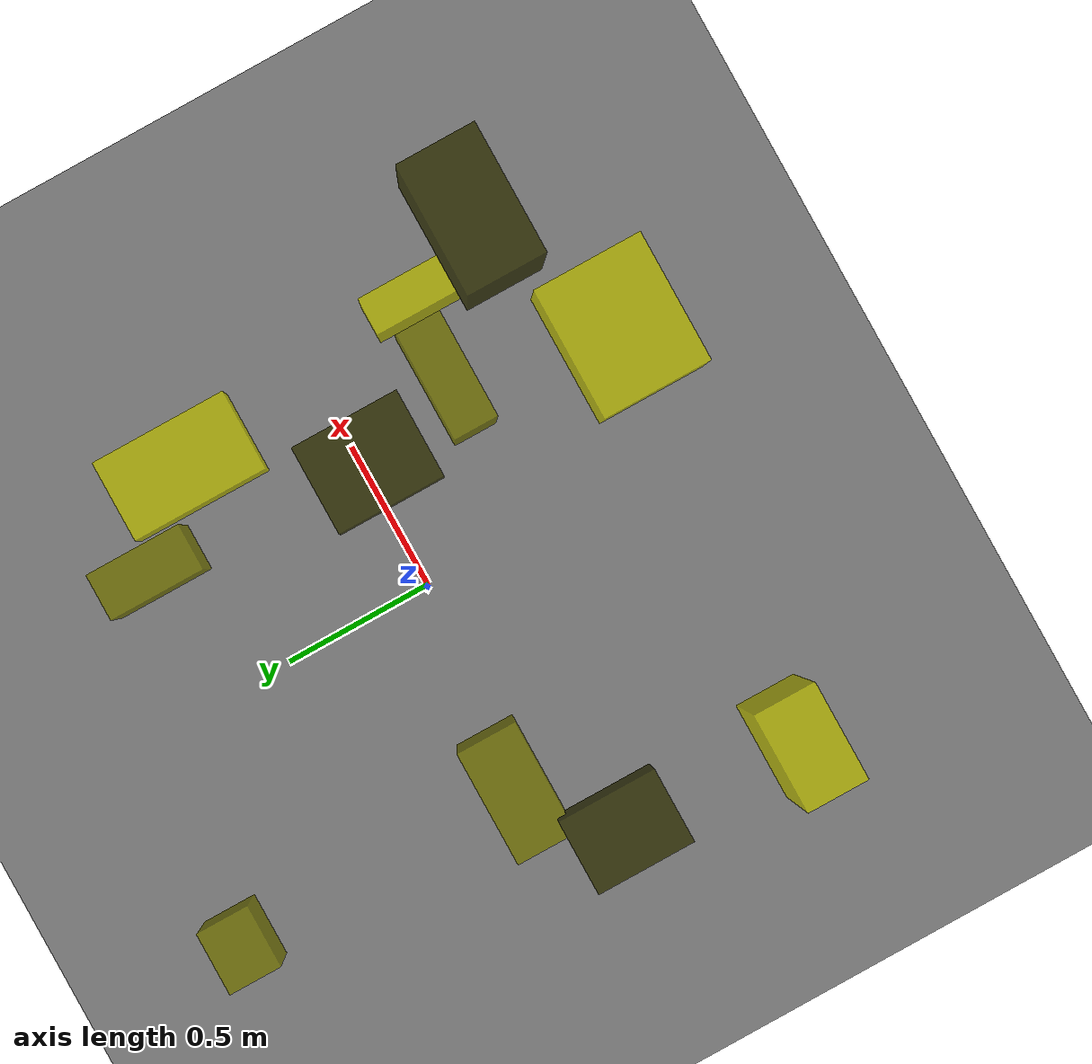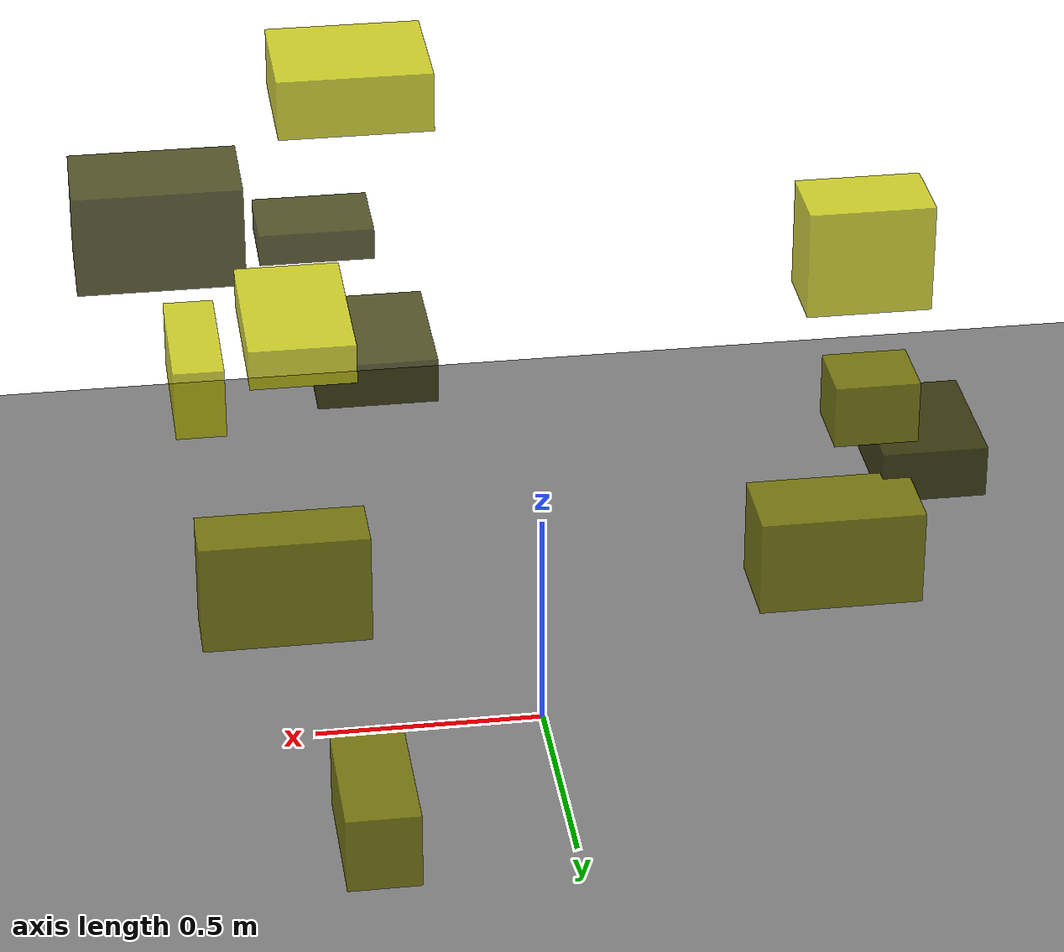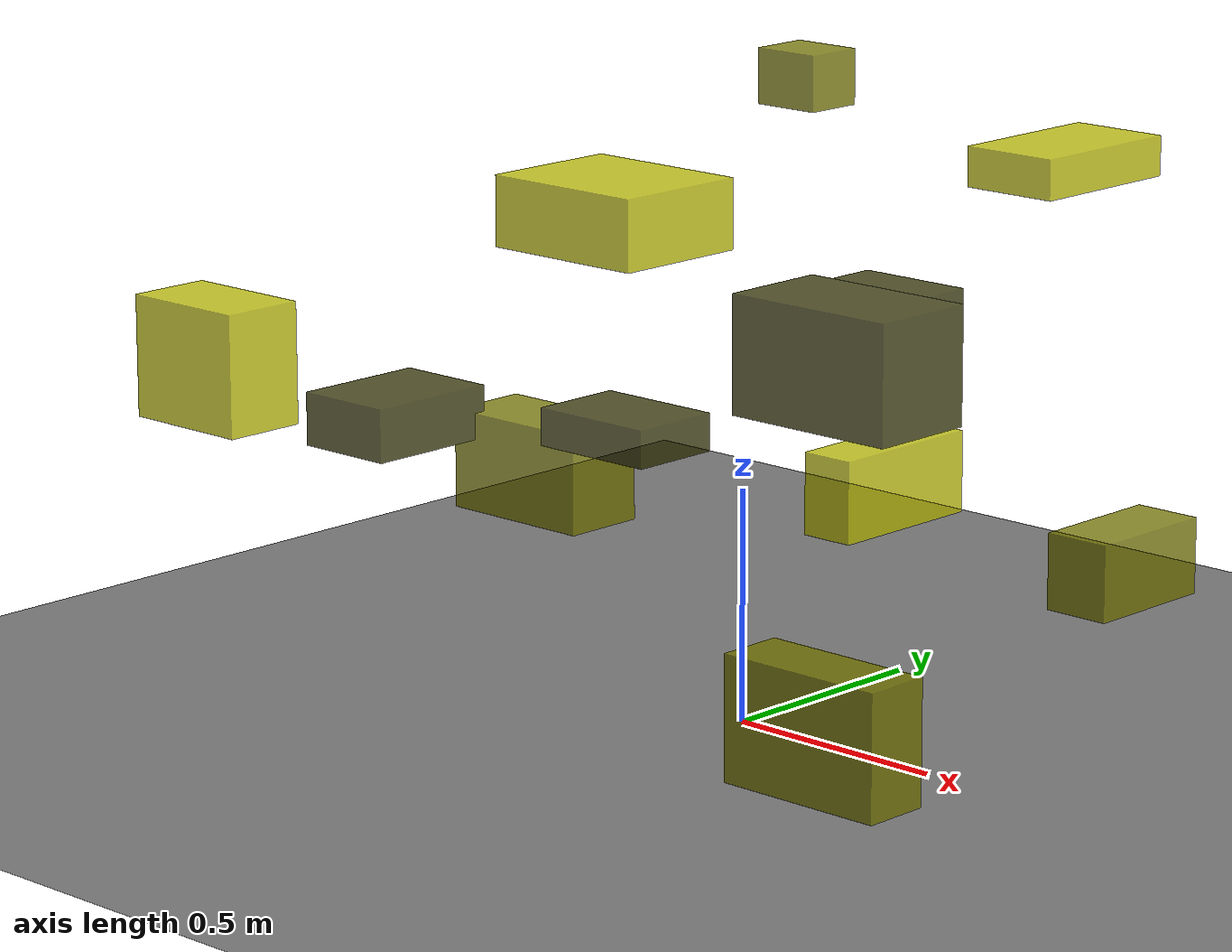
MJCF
<?xml version="1.0"?>
<mujoco model="obstacle_scene">
  <compiler angle="radian" coordinate="local"/>
  <option timestep="0.001" gravity="0 0 -9.81"/>

  <asset>
    <material name="obstacle_mat" rgba="0.8 0.8 0.0 0.8"/>
    <material name="ground_mat" rgba="0.5 0.5 0.5 1"/>
  </asset>

  <worldbody>
    <!-- Ground plane -->
    <geom name="ground" type="plane" size="3 3 0.1" material="ground_mat"/>

    <!-- Obstacles -->
    <body name="obstacle_0" pos="0.409787 -0.777777 0.841782">
      <geom name="obs_0" type="box" size="0.128531 0.092591 0.036393" rgba="0.2 0.2 0.0 0.8"/>
    </body>
    <body name="obstacle_1" pos="-0.627027 0.054274 0.430591">
      <geom name="obs_1" type="box" size="0.177520 0.093404 0.108340" rgba="0.5 0.5 0.0 0.8"/>
    </body>
    <body name="obstacle_2" pos="0.326153 -0.718726 1.232330">
      <geom name="obs_2" type="box" size="0.170656 0.141177 0.068392" rgba="0.8 0.8 0.0 0.8"/>
    </body>
    <body name="obstacle_3" pos="-0.858715 -0.164332 0.539285">
      <geom name="obs_3" type="box" size="0.114827 0.152434 0.058497" rgba="0.2 0.2 0.0 0.8"/>
    </body>
    <body name="obstacle_4" pos="0.533616 -0.358304 0.184095">
      <geom name="obs_4" type="box" size="0.190777 0.073009 0.131741" rgba="0.5 0.5 0.0 0.8"/>
    </body>
    <body name="obstacle_5" pos="0.709394 -0.387245 0.718877">
      <geom name="obs_5" type="box" size="0.054537 0.163253 0.079563" rgba="0.8 0.8 0.0 0.8"/>
    </body>
    <body name="obstacle_6" pos="0.768317 -0.565300 0.995311">
      <geom name="obs_6" type="box" size="0.183024 0.110676 0.115131" rgba="0.2 0.2 0.0 0.8"/>
    </body>
    <body name="obstacle_7" pos="0.441121 0.700680 0.282033">
      <geom name="obs_7" type="box" size="0.075731 0.154448 0.083323" rgba="0.5 0.5 0.0 0.8"/>
    </body>
    <body name="obstacle_8" pos="-0.837054 -0.686467 0.756841">
      <geom name="obs_8" type="box" size="0.144120 0.090167 0.128976" rgba="0.8 0.8 0.0 0.8"/>
    </body>
    <body name="obstacle_9" pos="0.360000 -0.041233 0.928388">
      <geom name="obs_9" type="box" size="0.124879 0.152179 0.048290" rgba="0.2 0.2 0.0 0.8"/>
    </body>
    <body name="obstacle_10" pos="-0.517606 0.772278 1.195812">
      <geom name="obs_10" type="box" size="0.081095 0.068525 0.062604" rgba="0.5 0.5 0.0 0.8"/>
    </body>
    <body name="obstacle_11" pos="0.546014 0.346154 1.207156">
      <geom name="obs_11" type="box" size="0.104660 0.175154 0.041116" rgba="0.8 0.8 0.0 0.8"/>
    </body>
  </worldbody>
</mujoco>
